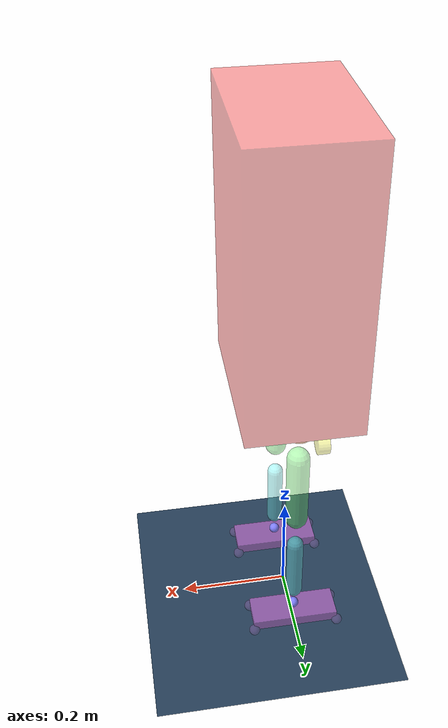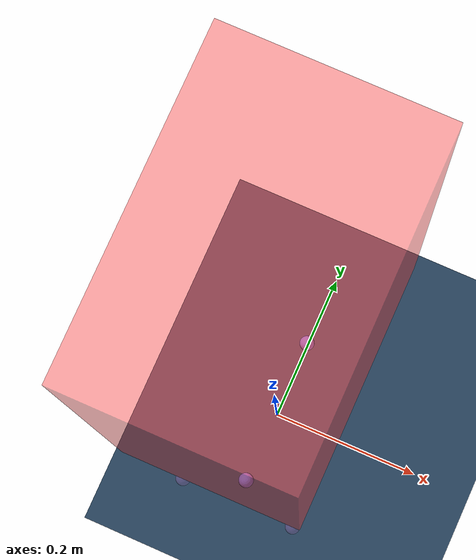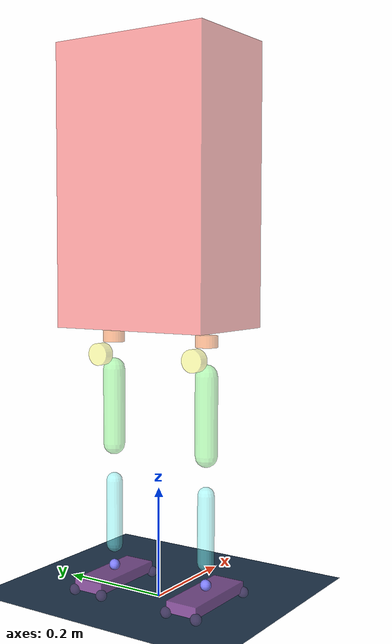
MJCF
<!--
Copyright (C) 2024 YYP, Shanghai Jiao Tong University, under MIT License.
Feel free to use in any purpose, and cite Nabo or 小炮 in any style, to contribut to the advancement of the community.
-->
<mujoco model="biped">
	<option timestep="0.001"/>
	<asset>
		<texture name="grid" type="2d" builtin="checker" width="512" height="512" rgb1=".1 .2 .3" rgb2=".2 .3 .4"/>
		<material name="grid" texture="grid" texrepeat="1 1" texuniform="true" reflectance=".2"/>
	</asset>

	<default>
		<!-- 实测这个限制是软的，有点像kp系数在限制驱动 -->
		<joint damping=".03" frictionloss="0.2" range="-45 45"/>
		<motor ctrlrange="-50 50" ctrllimited="true"/>

		<default class="footContact">
			<geom type="sphere" mass="0.1" size="0.01" rgba="1 0.5 1 0.1" friction="1 1 1"/>
		</default>
	</default>

	<worldbody>
		<geom size="5 3 .05" type="plane" material="grid" friction="1 1 1"/>
		<light mode="trackcom" pos="0 0 3"/>
		<light mode="targetbodycom" target="rbt" diffuse=".8 .8 .8" specular="0.3 0.3 0.3" pos="0 -6 4" cutoff="30"/>
		<body name="rbt" pos="0 0 0.74" euler="0 0 0">
			<!-- 悬空吊起需注释下面一行 -->
			<freejoint/>
			<!-- geom的size是half定义的 -->
			<geom name="body0" type="box" mass="10" size="0.1 0.15 0.25" rgba="1 0.3 0.3 0.5"/>
			<!--右腿-->
			<body pos="0 -0.1 -0.3">
				<joint name="rightHipYaw" axis="0 0 1"/>
				<geom type="cylinder" mass="0.5" size="0.02 0.01 0.1" pos="0 0 0.03" rgba="1 0.5 0.2 0.5"/>
				<body>
					<joint name="rightHipRol" axis="1 0 0"/>
					<geom type="cylinder" mass="0.5" size="0.02 0.01 0.1" euler="0 90 0" pos="-0.04 0 0" rgba="1 1 0.4 0.5"/>
					<body>
						<joint name="rightHipPit" axis="0 1 0" range="-60 0"/>
						<geom type="capsule" mass="1" size="0.02" fromto="0 0 -0.03 0 0 -0.17" rgba="0.5 1 0.5 0.5"/>
						<body pos="0 0 -0.2">
							<joint name="rightKnee" axis="0 1 0" range="0 160"/>
							<geom type="capsule" mass="1" size="0.015" fromto="0 0 -0.04 0 0 -0.16" rgba="0.5 1 1 0.5"/>
							<body pos="0 0 -0.2">
								<joint name="rightAnklePit" axis="0 1 0" range="-60 0"/>
								<joint name="rightAnkleRol" axis="1 0 0"/>
								<site name="rightAnkle" size="0.01" rgba="0.5 0.5 1 1"/>
								<!-- 假foot，四角球接触 -->
								<site name="rightFoot-" type="box" pos="0 0 -0.02" size="0.08 0.03 0.01" rgba="1 0.5 1 0.5"/>
								<geom class="footContact" pos=" 0.08  0.03 -0.03"/>
								<geom class="footContact" pos=" 0.08 -0.03 -0.03"/>
								<geom class="footContact" pos="-0.08 -0.03 -0.03"/>
								<geom class="footContact" pos="-0.08  0.03 -0.03"/>
							</body>
						</body>
					</body>
				</body>
			</body>
			<!--左腿-->
			<body pos="0 0.1 -0.3">
				<joint name="leftHipYaw" axis="0 0 1"/>
				<geom type="cylinder" mass="0.5" size="0.02 0.01 0.1" pos="0 0 0.03" rgba="1 0.5 0.2 0.5"/>
				<body>
					<joint name="leftHipRol" axis="1 0 0"/>
					<geom type="cylinder" mass="0.5" size="0.02 0.01 0.1" euler="0 90 0" pos="-0.04 0 0" rgba="1 1 0.4 0.5"/>
					<body>
						<joint name="leftHipPit" axis="0 1 0" range="-60 0"/>
						<geom type="capsule" mass="1" size="0.02" fromto="0 0 -0.03 0 0 -0.17" rgba="0.5 1 0.5 0.5"/>
						<body pos="0 0 -0.2">
							<joint name="leftKnee" axis="0 1 0" range="0 160"/>
							<geom type="capsule" mass="1" size="0.015" fromto="0 0 -0.04 0 0 -0.16" rgba="0.5 1 1 0.5"/>
							<body pos="0 0 -0.2">
								<joint name="leftAnklePit" axis="0 1 0" range="-60 0"/>
								<joint name="leftAnkleRol" axis="1 0 0"/>
								<site name="leftAnkle" size="0.01" rgba="0.5 0.5 1 1"/>
								<!-- 假foot，四角球接触 -->
								<site name="leftFoot-" type="box" pos="0 0 -0.02" size="0.08 0.03 0.01" rgba="1 0.5 1 0.5"/>
								<geom class="footContact" pos=" 0.08  0.03 -0.03"/>
								<geom class="footContact" pos=" 0.08 -0.03 -0.03"/>
								<geom class="footContact" pos="-0.08 -0.03 -0.03"/>
								<geom class="footContact" pos="-0.08  0.03 -0.03"/>
							</body>
						</body>
					</body>
				</body>
			</body>
		</body>
	</worldbody>

	<actuator>
		<motor name="mt00" joint="rightHipYaw"/>
		<motor name="mt01" joint="rightHipRol"/>
		<motor name="mt02" joint="rightHipPit"/>
		<motor name="mt03" joint="rightKnee"/>
		<motor name="mt04" joint="rightAnklePit"/>
		<motor name="mt05" joint="rightAnkleRol"/>

		<motor name="mt10" joint="leftHipYaw"/>
		<motor name="mt11" joint="leftHipRol"/>
		<motor name="mt12" joint="leftHipPit"/>
		<motor name="mt13" joint="leftKnee"/>
		<motor name="mt14" joint="leftAnklePit"/>
		<motor name="mt15" joint="leftAnkleRol"/>
	</actuator>
</mujoco>
